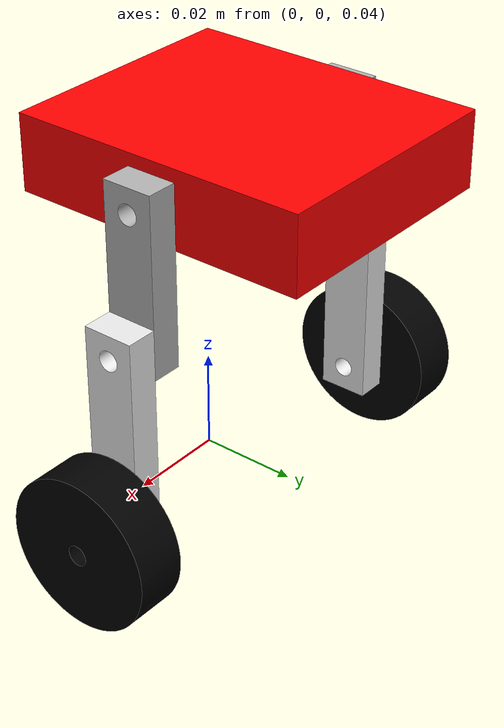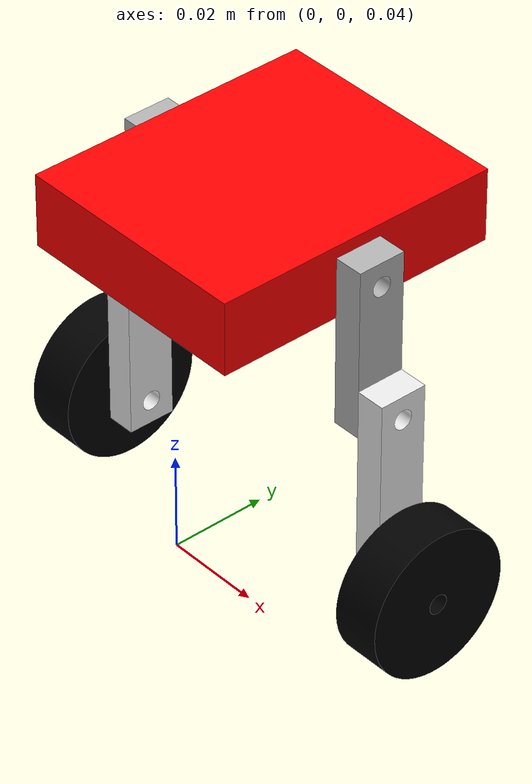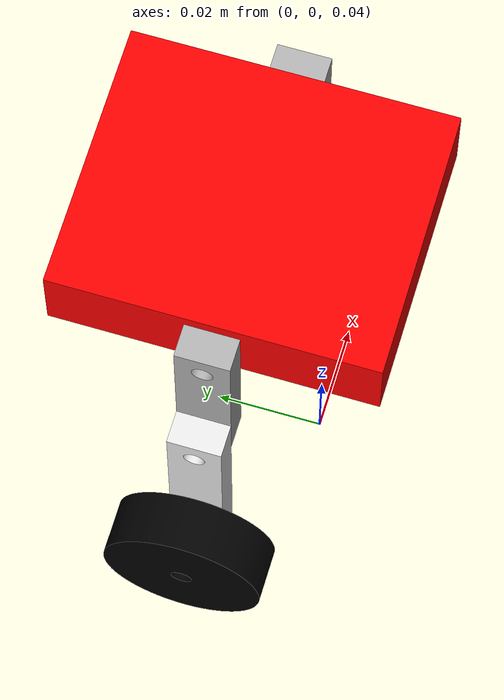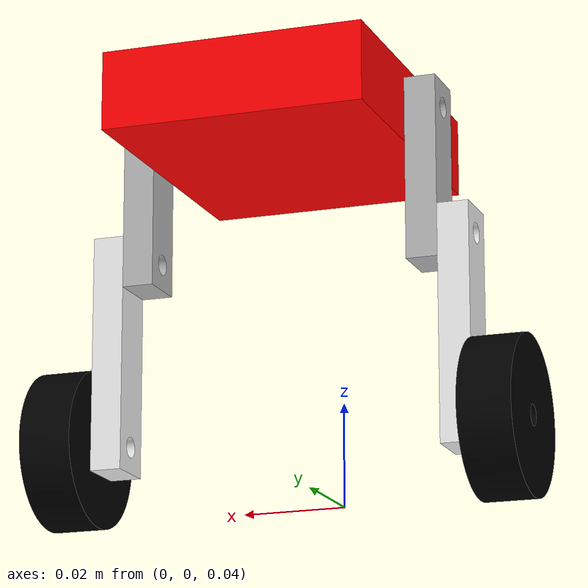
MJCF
<?xml version="1.0" ?>
<!-- Generated using onshape-to-robot -->
<!-- Onshape https://cad.onshape.com/documents/d6f28038394c6695a0af51fb/w/e48a2577644550901c42c5dc/e/c11f9da44c24d4a76c2e0eb3 -->
<mujoco model="biped2">
  <compiler angle="radian" meshdir="assets" autolimits="true"/>
  <default>
    <default class="biped2">
      <joint frictionloss="0.1" armature="0.005"/>
      <position kp="50" dampratio="1"/>
      <default class="visual">
        <geom type="mesh" contype="0" conaffinity="0" group="2"/>
      </default>
      <default class="collision">
        <geom group="3"/>
      </default>
    </default>
  </default>
  <worldbody>
    <!-- Link body -->
    <body name="body" pos="0 0 0.1" quat="1 0 0 0" childclass="biped2">
      <freejoint name="body_freejoint"/>
      <inertial pos="0.00628116 0.014969 0.011239" mass="0.000443717" fullinertia="1.43425e-07 1.00872e-07 2.27435e-07 0 0 0"/>
      <!-- Part body -->
      <geom type="mesh" class="visual" pos="0.00628116 0.014969 0.00373902" quat="1 0 0 0" mesh="body" material="body_material"/>
      <geom type="mesh" class="collision" pos="0.00628116 0.014969 0.00373902" quat="1 0 0 0" mesh="body" material="body_material"/>
      <!-- Link femur -->
      <body name="femur" pos="0.0312812 0.014969 0.011239" quat="0.5 -0.5 -0.5 0.5">
        <!-- Joint from body to femur -->
        <joint axis="0 0 1" name="femur_1" type="hinge" range="-1.5707963267948966 1.5707963267948966"/>
        <inertial pos="3.11297e-18 0.0125 -0.003" mass="0.0024365" fullinertia="2.45637e-07 2.8996e-08 2.60014e-07 0 0 -3.26676e-52"/>
        <!-- Part femur -->
        <geom type="mesh" class="visual" pos="3.79461e-19 0.06 -0.017" quat="0.707107 0.707107 -0 -0" mesh="femur" material="femur_material"/>
        <geom type="mesh" class="collision" pos="3.79461e-19 0.06 -0.017" quat="0.707107 0.707107 -0 -0" mesh="femur" material="femur_material"/>
        <!-- Link tibia -->
        <body name="tibia" pos="8.42053e-19 0.025 -0.006" quat="1 0 0 0">
          <!-- Joint from femur to tibia -->
          <joint axis="0 0 1" name="tibia_1" type="hinge" range="-1.5707963267948966 1.5707963267948966"/>
          <inertial pos="1.98418e-18 0.0175 -0.003" mass="0.0031865" fullinertia="5.21176e-07 3.7496e-08 5.39552e-07 0 0 0"/>
          <!-- Part tibia -->
          <geom type="mesh" class="visual" pos="3.79461e-19 0.035 -0.011" quat="0.707107 0.707107 -0 -0" mesh="tibia" material="tibia_material"/>
          <geom type="mesh" class="collision" pos="3.79461e-19 0.035 -0.011" quat="0.707107 0.707107 -0 -0" mesh="tibia" material="tibia_material"/>
          <!-- Link wheel -->
          <body name="wheel" pos="-1.98781e-19 0.035 -0.006" quat="1 0 0 0">
            <!-- Joint from tibia to wheel -->
            <joint axis="0 0 1" name="wheel_1"/>
            <inertial pos="3.88992e-19 -1.22984e-18 -0.005" mass="0.0545019" fullinertia="3.57442e-06 3.57442e-06 6.24047e-06 0 0 0"/>
            <!-- Part wheel -->
            <geom type="mesh" class="visual" pos="3.79461e-19 0 -0.005" quat="0.707107 0.707107 -0 -0" mesh="wheel" material="wheel_material"/>
            <geom type="mesh" class="collision" pos="3.79461e-19 0 -0.005" quat="0.707107 0.707107 -0 -0" mesh="wheel" material="wheel_material"/>
          </body>
        </body>
      </body>
      <!-- Link femur_2 -->
      <body name="femur_2" pos="-0.0187188 0.014969 0.011239" quat="0.5 -0.5 0.5 -0.5">
        <!-- Joint from body to femur_2 -->
        <joint axis="0 0 1" name="femur_2" type="hinge" range="-1.5707963267948966 1.5707963267948966"/>
        <inertial pos="3.39489e-18 0.0125 -0.003" mass="0.0024365" fullinertia="2.45637e-07 2.8996e-08 2.60014e-07 0 0 0"/>
        <!-- Part femur_2 -->
        <geom type="mesh" class="visual" pos="6.61374e-19 0.06 -0.017" quat="0.707107 0.707107 -0 -0" mesh="femur" material="femur_material"/>
        <geom type="mesh" class="collision" pos="6.61374e-19 0.06 -0.017" quat="0.707107 0.707107 -0 -0" mesh="femur" material="femur_material"/>
        <!-- Link tibia_2 -->
        <body name="tibia_2" pos="1.12397e-18 0.025 -0.006" quat="1 0 0 0">
          <!-- Joint from femur_2 to tibia_2 -->
          <joint axis="0 0 1" name="tibia_2" type="hinge" range="-1.5707963267948966 1.5707963267948966"/>
          <inertial pos="5.31367e-19 0.0175 -0.003" mass="0.0031865" fullinertia="5.21176e-07 3.7496e-08 5.39552e-07 0 0 0"/>
          <!-- Part tibia_2 -->
          <geom type="mesh" class="visual" pos="-1.07335e-18 0.035 -0.011" quat="0.707107 0.707107 -0 -0" mesh="tibia" material="tibia_material"/>
          <geom type="mesh" class="collision" pos="-1.07335e-18 0.035 -0.011" quat="0.707107 0.707107 -0 -0" mesh="tibia" material="tibia_material"/>
          <!-- Link wheel_2 -->
          <body name="wheel_2" pos="-1.65159e-18 0.035 -0.006" quat="0 0 0 1">
            <!-- Joint from tibia_2 to wheel_2 -->
            <joint axis="0 0 1" name="wheel_2"/>
            <inertial pos="-6.51842e-19 -1.22984e-18 -0.005" mass="0.0545019" fullinertia="3.57442e-06 3.57442e-06 6.24047e-06 0 0 0"/>
            <!-- Part wheel_2 -->
            <geom type="mesh" class="visual" pos="-6.61374e-19 0 -0.005" quat="0.707107 0.707107 -0 -0" mesh="wheel" material="wheel_material"/>
            <geom type="mesh" class="collision" pos="-6.61374e-19 0 -0.005" quat="0.707107 0.707107 -0 -0" mesh="wheel" material="wheel_material"/>
          </body>
        </body>
      </body>
    </body>
  </worldbody>
  <asset>
    <mesh file="wheel.stl"/>
    <mesh file="tibia.stl"/>
    <mesh file="femur.stl"/>
    <mesh file="body.stl"/>
    <material name="body_material" rgba="1 0 0 1"/>
    <material name="femur_material" rgba="0.701961 0.701961 0.701961 1"/>
    <material name="tibia_material" rgba="0.917647 0.917647 0.917647 1"/>
    <material name="wheel_material" rgba="0 0 0 1"/>
  </asset>
<actuator>
    <position class="biped2" name="femur_1" joint="femur_1" inheritrange="1"/>
    <position class="biped2" name="tibia_1" joint="tibia_1" inheritrange="1"/>
    <motor name="wheel_1" joint="wheel_1" gear="1" ctrllimited="true" ctrlrange="-10 10"/>
    <position class="biped2" name="femur_2" joint="femur_2" inheritrange="1"/>
    <position class="biped2" name="tibia_2" joint="tibia_2" inheritrange="1"/>
    <motor name="wheel_2" joint="wheel_2" gear="1" ctrllimited="true" ctrlrange="-10 10"/>
</actuator>
  <equality/>
</mujoco>
